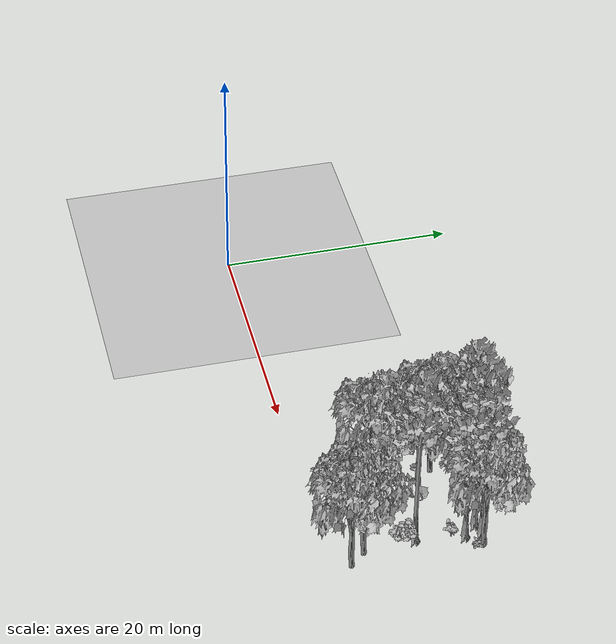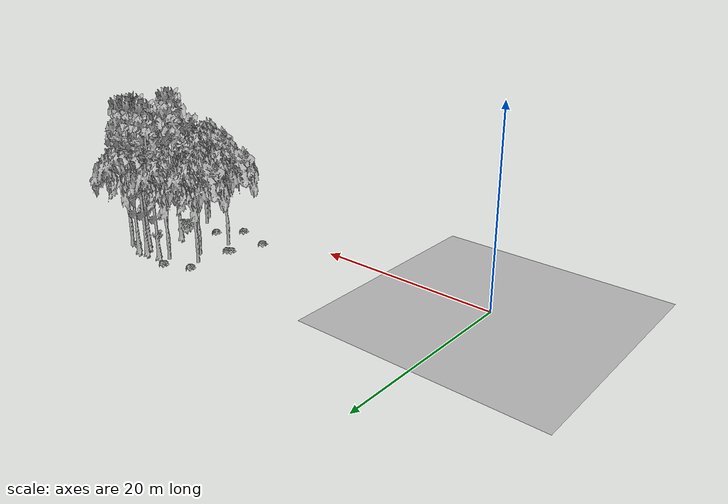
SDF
<sdf version="1.7">
 <world name="default">
  <model name="ground_plane">
   <static>1</static>
   <link name="link">
    <collision name="collision">
     <pose>-50 0 0 0 -0 0</pose>
     <geometry><plane><normal>0 0 1</normal><size>80 80</size></plane></geometry>
     <surface><contact><ode><min_depth>0.01</min_depth><max_vel>0</max_vel></ode></contact></surface>
    </collision>
    <visual name="grass">
     <cast_shadows>0</cast_shadows>
     <geometry>
      <mesh>
       <scale>0.46714285714285714 0.46714285714285714 0.1</scale>
       <uri>file://grass_plane/meshes/grass_plane.dae</uri>
      </mesh>
     </geometry>
    </visual>
   </link>
  </model>
  <model name="Tree 28">
   <static>1</static>
   <pose>29.250044402486054 10.535500147121269 0 1.57079 -0 0</pose>
   <link name="link">
    <collision name="collision">
     <geometry><mesh><scale>3.5 5 3.5</scale><uri>model://tree_2/meshes/tree_2.obj</uri></mesh></geometry>
    </collision>
    <visual name="visual">
     <geometry><mesh><scale>3.5 5 3.5</scale><uri>model://tree_2/meshes/tree_2.obj</uri></mesh></geometry>
    </visual>
   </link>
  </model>
  <model name="Tree 55">
   <static>1</static>
   <pose>38.119969653357714 1.7134003415647072 0 1.57079 -0 0</pose>
   <link name="link">
    <collision name="collision">
     <geometry><mesh><scale>3.5 5 3.5</scale><uri>model://tree_2/meshes/tree_2.obj</uri></mesh></geometry>
    </collision>
    <visual name="visual">
     <geometry><mesh><scale>3.5 5 3.5</scale><uri>model://tree_2/meshes/tree_2.obj</uri></mesh></geometry>
    </visual>
   </link>
  </model>
  <model name="Tree 133">
   <static>1</static>
   <pose>36.266100390228004 7.3964876338371965 0 1.57079 -0 0</pose>
   <link name="link">
    <collision name="collision">
     <geometry><mesh><scale>3.5 5 3.5</scale><uri>model://tree_9/meshes/tree_9.obj</uri></mesh></geometry>
    </collision>
    <visual name="visual">
     <geometry><mesh><scale>3.5 5 3.5</scale><uri>model://tree_9/meshes/tree_9.obj</uri></mesh></geometry>
    </visual>
   </link>
  </model>
  <model name="Tree 155">
   <static>1</static>
   <pose>30.61741819444933 9.15502340274179 0 1.57079 -0 0</pose>
   <link name="link">
    <collision name="collision">
     <geometry><mesh><scale>3.5 5 3.5</scale><uri>model://tree_2/meshes/tree_2.obj</uri></mesh></geometry>
    </collision>
    <visual name="visual">
     <geometry><mesh><scale>3.5 5 3.5</scale><uri>model://tree_2/meshes/tree_2.obj</uri></mesh></geometry>
    </visual>
   </link>
  </model>
  <model name="Tree 249">
   <static>1</static>
   <pose>30.24784431760007 5.494286700309267 0 1.57079 -0 0</pose>
   <link name="link">
    <collision name="collision">
     <geometry><mesh><scale>3.5 5 3.5</scale><uri>model://tree_2/meshes/tree_2.obj</uri></mesh></geometry>
    </collision>
    <visual name="visual">
     <geometry><mesh><scale>3.5 5 3.5</scale><uri>model://tree_2/meshes/tree_2.obj</uri></mesh></geometry>
    </visual>
   </link>
  </model>
  <model name="Tree 273">
   <static>1</static>
   <pose>35.692510527352965 12.467783880552105 0 1.57079 -0 0</pose>
   <link name="link">
    <collision name="collision">
     <geometry><mesh><scale>3.5 5 3.5</scale><uri>model://tree_9/meshes/tree_9.obj</uri></mesh></geometry>
    </collision>
    <visual name="visual">
     <geometry><mesh><scale>3.5 5 3.5</scale><uri>model://tree_9/meshes/tree_9.obj</uri></mesh></geometry>
    </visual>
   </link>
  </model>
  <model name="Tree 290">
   <static>1</static>
   <pose>32.26907606396472 11.970099559253633 0 1.57079 -0 0</pose>
   <link name="link">
    <collision name="collision">
     <geometry><mesh><scale>3.5 5 3.5</scale><uri>model://tree_2/meshes/tree_2.obj</uri></mesh></geometry>
    </collision>
    <visual name="visual">
     <geometry><mesh><scale>3.5 5 3.5</scale><uri>model://tree_2/meshes/tree_2.obj</uri></mesh></geometry>
    </visual>
   </link>
  </model>
  <model name="Tree 299">
   <static>1</static>
   <pose>37.003671255975505 2.9754099339670077 0 1.57079 -0 0</pose>
   <link name="link">
    <collision name="collision">
     <geometry><mesh><scale>3.5 5 3.5</scale><uri>model://tree_2/meshes/tree_2.obj</uri></mesh></geometry>
    </collision>
    <visual name="visual">
     <geometry><mesh><scale>3.5 5 3.5</scale><uri>model://tree_2/meshes/tree_2.obj</uri></mesh></geometry>
    </visual>
   </link>
  </model>
  <model name="Tree 364">
   <static>1</static>
   <pose>36.75949507348126 11.384484737068583 0 1.57079 -0 0</pose>
   <link name="link">
    <collision name="collision">
     <geometry><mesh><scale>3.5 5 3.5</scale><uri>model://tree_9/meshes/tree_9.obj</uri></mesh></geometry>
    </collision>
    <visual name="visual">
     <geometry><mesh><scale>3.5 5 3.5</scale><uri>model://tree_9/meshes/tree_9.obj</uri></mesh></geometry>
    </visual>
   </link>
  </model>
  <model name="Tree 501">
   <static>1</static>
   <pose>33.85642075558691 12.246704771538639 0 1.57079 -0 0</pose>
   <link name="link">
    <collision name="collision">
     <geometry><mesh><scale>3.5 5 3.5</scale><uri>model://tree_9/meshes/tree_9.obj</uri></mesh></geometry>
    </collision>
    <visual name="visual">
     <geometry><mesh><scale>3.5 5 3.5</scale><uri>model://tree_9/meshes/tree_9.obj</uri></mesh></geometry>
    </visual>
   </link>
  </model>
  <model name="Tree 529">
   <static>1</static>
   <pose>36.815077097153434 12.703285121802892 0 1.57079 -0 0</pose>
   <link name="link">
    <collision name="collision">
     <geometry><mesh><scale>3.5 5 3.5</scale><uri>model://tree_9/meshes/tree_9.obj</uri></mesh></geometry>
    </collision>
    <visual name="visual">
     <geometry><mesh><scale>3.5 5 3.5</scale><uri>model://tree_9/meshes/tree_9.obj</uri></mesh></geometry>
    </visual>
   </link>
  </model>
  <model name="Tree 587">
   <static>1</static>
   <pose>38.210758633102586 12.465286779227554 0 1.57079 -0 0</pose>
   <link name="link">
    <collision name="collision">
     <geometry><mesh><scale>3.5 5 3.5</scale><uri>model://tree_2/meshes/tree_2.obj</uri></mesh></geometry>
    </collision>
    <visual name="visual">
     <geometry><mesh><scale>3.5 5 3.5</scale><uri>model://tree_2/meshes/tree_2.obj</uri></mesh></geometry>
    </visual>
   </link>
  </model>
  <model name="Bush 0">
   <static>1</static>
   <pose>29.008157724283564 6.739148960671699 0 1.57079 -0 0</pose>
   <link name="link">
    <collision name="collision">
     <geometry><mesh><scale>2 2 2</scale><uri>model://bush_2/meshes/bush_2.obj</uri></mesh></geometry>
     <surface><contact><collide_without_contact>false</collide_without_contact></contact></surface>
    </collision>
    <visual name="visual">
     <geometry><mesh><scale>2 2 2</scale><uri>model://bush_2/meshes/bush_2.obj</uri></mesh></geometry>
    </visual>
   </link>
  </model>
  <model name="Bush 88">
   <static>1</static>
   <pose>27.417736571828584 3.010832207216403 0 1.57079 -0 0</pose>
   <link name="link">
    <collision name="collision">
     <geometry><mesh><scale>2 2 2</scale><uri>model://bush_2/meshes/bush_2.obj</uri></mesh></geometry>
     <surface><contact><collide_without_contact>false</collide_without_contact></contact></surface>
    </collision>
    <visual name="visual">
     <geometry><mesh><scale>2 2 2</scale><uri>model://bush_2/meshes/bush_2.obj</uri></mesh></geometry>
    </visual>
   </link>
  </model>
  <model name="Bush 95">
   <static>1</static>
   <pose>36.32611840004144 6.054165117032369 0 1.57079 -0 0</pose>
   <link name="link">
    <collision name="collision">
     <geometry><mesh><scale>2 2 2</scale><uri>model://bush_1/meshes/bush_1.obj</uri></mesh></geometry>
     <surface><contact><collide_without_contact>false</collide_without_contact></contact></surface>
    </collision>
    <visual name="visual">
     <geometry><mesh><scale>2 2 2</scale><uri>model://bush_1/meshes/bush_1.obj</uri></mesh></geometry>
    </visual>
   </link>
  </model>
  <model name="Bush 108">
   <static>1</static>
   <pose>31.676302186841284 1.993790568232555 0 1.57079 -0 0</pose>
   <link name="link">
    <collision name="collision">
     <geometry><mesh><scale>2 2 2</scale><uri>model://bush_2/meshes/bush_2.obj</uri></mesh></geometry>
     <surface><contact><collide_without_contact>false</collide_without_contact></contact></surface>
    </collision>
    <visual name="visual">
     <geometry><mesh><scale>2 2 2</scale><uri>model://bush_2/meshes/bush_2.obj</uri></mesh></geometry>
    </visual>
   </link>
  </model>
  <model name="Bush 109">
   <static>1</static>
   <pose>36.78709256833443 10.235659146143917 0 1.57079 -0 0</pose>
   <link name="link">
    <collision name="collision">
     <geometry><mesh><scale>2 2 2</scale><uri>model://bush_0/meshes/bush_0.obj</uri></mesh></geometry>
     <surface><contact><collide_without_contact>false</collide_without_contact></contact></surface>
    </collision>
    <visual name="visual">
     <geometry><mesh><scale>2 2 2</scale><uri>model://bush_0/meshes/bush_0.obj</uri></mesh></geometry>
    </visual>
   </link>
  </model>
  <model name="Bush 164">
   <static>1</static>
   <pose>36.114838747113524 6.653847460367331 0 1.57079 -0 0</pose>
   <link name="link">
    <collision name="collision">
     <geometry><mesh><scale>2 2 2</scale><uri>model://bush_1/meshes/bush_1.obj</uri></mesh></geometry>
     <surface><contact><collide_without_contact>false</collide_without_contact></contact></surface>
    </collision>
    <visual name="visual">
     <geometry><mesh><scale>2 2 2</scale><uri>model://bush_1/meshes/bush_1.obj</uri></mesh></geometry>
    </visual>
   </link>
  </model>
  <model name="Bush 190">
   <static>1</static>
   <pose>28.691099435318336 6.529471795196137 0 1.57079 -0 0</pose>
   <link name="link">
    <collision name="collision">
     <geometry><mesh><scale>2 2 2</scale><uri>model://bush_2/meshes/bush_2.obj</uri></mesh></geometry>
     <surface><contact><collide_without_contact>false</collide_without_contact></contact></surface>
    </collision>
    <visual name="visual">
     <geometry><mesh><scale>2 2 2</scale><uri>model://bush_2/meshes/bush_2.obj</uri></mesh></geometry>
    </visual>
   </link>
  </model>
  <model name="Bush 358">
   <static>1</static>
   <pose>28.73322342724053 11.984518990358922 0 1.57079 -0 0</pose>
   <link name="link">
    <collision name="collision">
     <geometry><mesh><scale>2 2 2</scale><uri>model://bush_2/meshes/bush_2.obj</uri></mesh></geometry>
     <surface><contact><collide_without_contact>false</collide_without_contact></contact></surface>
    </collision>
    <visual name="visual">
     <geometry><mesh><scale>2 2 2</scale><uri>model://bush_2/meshes/bush_2.obj</uri></mesh></geometry>
    </visual>
   </link>
  </model>
  <model name="Bush 542">
   <static>1</static>
   <pose>33.893509798726626 4.187717294513334 0 1.57079 -0 0</pose>
   <link name="link">
    <collision name="collision">
     <geometry><mesh><scale>2 2 2</scale><uri>model://bush_2/meshes/bush_2.obj</uri></mesh></geometry>
     <surface><contact><collide_without_contact>false</collide_without_contact></contact></surface>
    </collision>
    <visual name="visual">
     <geometry><mesh><scale>2 2 2</scale><uri>model://bush_2/meshes/bush_2.obj</uri></mesh></geometry>
    </visual>
   </link>
  </model>
  <model name="Bush 607">
   <static>1</static>
   <pose>31.56755798947455 13.253460190937318 0 1.57079 -0 0</pose>
   <link name="link">
    <collision name="collision">
     <geometry><mesh><scale>2 2 2</scale><uri>model://bush_2/meshes/bush_2.obj</uri></mesh></geometry>
     <surface><contact><collide_without_contact>false</collide_without_contact></contact></surface>
    </collision>
    <visual name="visual">
     <geometry><mesh><scale>2 2 2</scale><uri>model://bush_2/meshes/bush_2.obj</uri></mesh></geometry>
    </visual>
   </link>
  </model>
  <model name="Bush 620">
   <static>1</static>
   <pose>37.99773893307567 12.106588771222263 0 1.57079 -0 0</pose>
   <link name="link">
    <collision name="collision">
     <geometry><mesh><scale>2 2 2</scale><uri>model://bush_2/meshes/bush_2.obj</uri></mesh></geometry>
     <surface><contact><collide_without_contact>false</collide_without_contact></contact></surface>
    </collision>
    <visual name="visual">
     <geometry><mesh><scale>2 2 2</scale><uri>model://bush_2/meshes/bush_2.obj</uri></mesh></geometry>
    </visual>
   </link>
  </model>
 </world>
</sdf>
